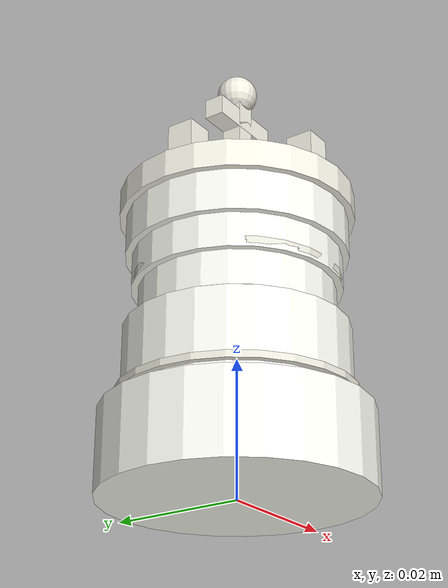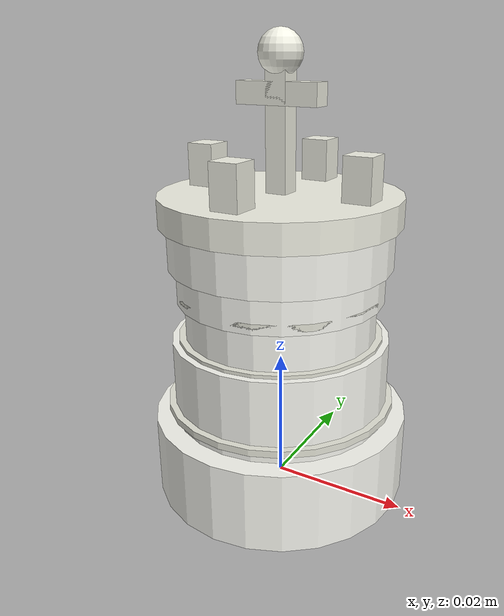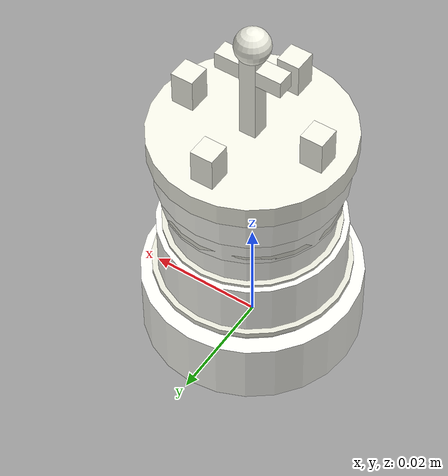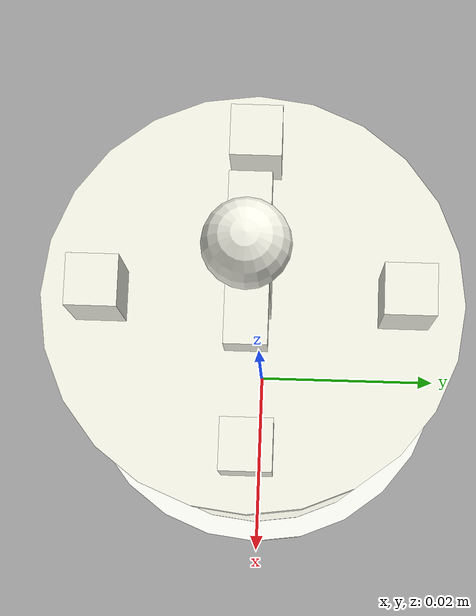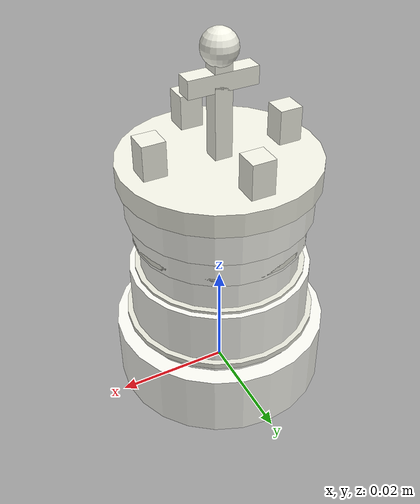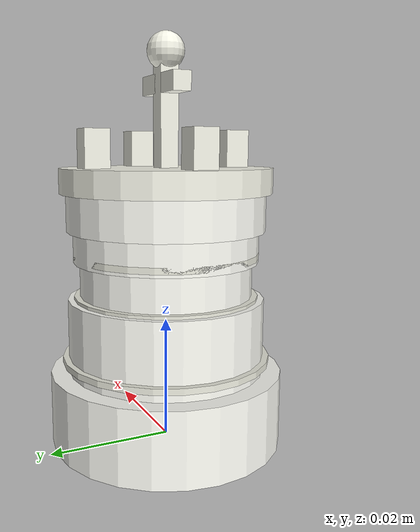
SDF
<?xml version="1.0" ?>
<sdf version="1.6">
  <model name="chess_king_white">
    <link name="link">
      <pose>0 0 0 0 0 0</pose>

      <inertial>
        <mass>0.12</mass>
        <pose>0 0 0.022 0 0 0</pose>
        <inertia>
          <ixx>0.00004</ixx>
          <ixy>0</ixy>
          <ixz>0</ixz>
          <iyy>0.00004</iyy>
          <iyz>0</iyz>
          <izz>0.00001</izz>
        </inertia>
      </inertial>

      <!-- Base -->
      <collision name="base_collision">
        <pose>0 0 0.006 0 0 0</pose>
        <geometry>
          <cylinder>
            <radius>0.019</radius>
            <length>0.012</length>
          </cylinder>
        </geometry>
        <surface>
          <friction>
            <ode>
              <mu>0.8</mu>
              <mu2>0.8</mu2>
            </ode>
          </friction>
          <bounce>
            <restitution_coefficient>0.1</restitution_coefficient>
          </bounce>
        </surface>
      </collision>

      <!-- Main body (royal proportions) -->
      <collision name="body_bottom_collision">
        <pose>0 0 0.017 0 0 0</pose>
        <geometry>
          <cylinder>
            <radius>0.016</radius>
            <length>0.014</length>
          </cylinder>
        </geometry>
      </collision>

      <collision name="body_middle_collision">
        <pose>0 0 0.026 0 0 0</pose>
        <geometry>
          <cylinder>
            <radius>0.014</radius>
            <length>0.010</length>
          </cylinder>
        </geometry>
      </collision>

      <collision name="body_upper_collision">
        <pose>0 0 0.033 0 0 0</pose>
        <geometry>
          <cylinder>
            <radius>0.015</radius>
            <length>0.006</length>
          </cylinder>
        </geometry>
      </collision>

      <!-- Crown base -->
      <collision name="crown_base_collision">
        <pose>0 0 0.038 0 0 0</pose>
        <geometry>
          <cylinder>
            <radius>0.016</radius>
            <length>0.006</length>
          </cylinder>
        </geometry>
      </collision>

      <!-- Crown band with decorative elements -->
      <collision name="crown_band_collision">
        <pose>0 0 0.043 0 0 0</pose>
        <geometry>
          <cylinder>
            <radius>0.017</radius>
            <length>0.004</length>
          </cylinder>
        </geometry>
      </collision>

      <!-- Crown decorative points -->
      <collision name="crown_decoration_1">
        <pose>0.012 0 0.047 0 0 0</pose>
        <geometry>
          <box>
            <size>0.004 0.004 0.008</size>
          </box>
        </geometry>
      </collision>

      <collision name="crown_decoration_2">
        <pose>-0.012 0 0.047 0 0 0</pose>
        <geometry>
          <box>
            <size>0.004 0.004 0.008</size>
          </box>
        </geometry>
      </collision>

      <collision name="crown_decoration_3">
        <pose>0 0.012 0.047 0 0 0</pose>
        <geometry>
          <box>
            <size>0.004 0.004 0.008</size>
          </box>
        </geometry>
      </collision>

      <collision name="crown_decoration_4">
        <pose>0 -0.012 0.047 0 0 0</pose>
        <geometry>
          <box>
            <size>0.004 0.004 0.008</size>
          </box>
        </geometry>
      </collision>

      <!-- Cross (distinctive king feature) -->
      <!-- Vertical part of cross -->
      <collision name="cross_vertical_collision">
        <pose>0 0 0.054 0 0 0</pose>
        <geometry>
          <box>
            <size>0.003 0.003 0.018</size>
          </box>
        </geometry>
      </collision>

      <!-- Horizontal part of cross -->
      <collision name="cross_horizontal_collision">
        <pose>0 0 0.058 0 0 0</pose>
        <geometry>
          <box>
            <size>0.012 0.003 0.003</size>
          </box>
        </geometry>
      </collision>

      <!-- Cross top sphere -->
      <collision name="cross_top_collision">
        <pose>0 0 0.063 0 0 0</pose>
        <geometry>
          <sphere>
            <radius>0.003</radius>
          </sphere>
        </geometry>
      </collision>

      <!-- Visuals -->
      <visual name="base_visual">
        <pose>0 0 0.006 0 0 0</pose>
        <geometry>
          <cylinder>
            <radius>0.019</radius>
            <length>0.012</length>
          </cylinder>
        </geometry>
        <material>
          <ambient>0.95 0.95 0.9 1</ambient>
          <diffuse>0.98 0.98 0.95 1</diffuse>
          <specular>0.4 0.4 0.4 1</specular>
        </material>
      </visual>

      <visual name="body_bottom_visual">
        <pose>0 0 0.017 0 0 0</pose>
        <geometry>
          <cylinder>
            <radius>0.016</radius>
            <length>0.014</length>
          </cylinder>
        </geometry>
        <material>
          <ambient>0.95 0.95 0.9 1</ambient>
          <diffuse>0.98 0.98 0.95 1</diffuse>
          <specular>0.4 0.4 0.4 1</specular>
        </material>
      </visual>

      <visual name="body_middle_visual">
        <pose>0 0 0.026 0 0 0</pose>
        <geometry>
          <cylinder>
            <radius>0.014</radius>
            <length>0.010</length>
          </cylinder>
        </geometry>
        <material>
          <ambient>0.95 0.95 0.9 1</ambient>
          <diffuse>0.98 0.98 0.95 1</diffuse>
          <specular>0.4 0.4 0.4 1</specular>
        </material>
      </visual>

      <visual name="body_upper_visual">
        <pose>0 0 0.033 0 0 0</pose>
        <geometry>
          <cylinder>
            <radius>0.015</radius>
            <length>0.006</length>
          </cylinder>
        </geometry>
        <material>
          <ambient>0.95 0.95 0.9 1</ambient>
          <diffuse>0.98 0.98 0.95 1</diffuse>
          <specular>0.4 0.4 0.4 1</specular>
        </material>
      </visual>

      <visual name="crown_base_visual">
        <pose>0 0 0.038 0 0 0</pose>
        <geometry>
          <cylinder>
            <radius>0.016</radius>
            <length>0.006</length>
          </cylinder>
        </geometry>
        <material>
          <ambient>0.95 0.95 0.9 1</ambient>
          <diffuse>0.98 0.98 0.95 1</diffuse>
          <specular>0.5 0.5 0.5 1</specular>
        </material>
      </visual>

      <visual name="crown_band_visual">
        <pose>0 0 0.043 0 0 0</pose>
        <geometry>
          <cylinder>
            <radius>0.017</radius>
            <length>0.004</length>
          </cylinder>
        </geometry>
        <material>
          <ambient>0.9 0.9 0.85 1</ambient>
          <diffuse>0.95 0.95 0.9 1</diffuse>
          <specular>0.6 0.6 0.6 1</specular>
        </material>
      </visual>

      <!-- Crown decorations -->
      <visual name="crown_decoration_1_visual">
        <pose>0.012 0 0.047 0 0 0</pose>
        <geometry>
          <box>
            <size>0.004 0.004 0.008</size>
          </box>
        </geometry>
        <material>
          <ambient>0.9 0.9 0.85 1</ambient>
          <diffuse>0.95 0.95 0.9 1</diffuse>
          <specular>0.6 0.6 0.6 1</specular>
        </material>
      </visual>

      <visual name="crown_decoration_2_visual">
        <pose>-0.012 0 0.047 0 0 0</pose>
        <geometry>
          <box>
            <size>0.004 0.004 0.008</size>
          </box>
        </geometry>
        <material>
          <ambient>0.9 0.9 0.85 1</ambient>
          <diffuse>0.95 0.95 0.9 1</diffuse>
          <specular>0.6 0.6 0.6 1</specular>
        </material>
      </visual>

      <visual name="crown_decoration_3_visual">
        <pose>0 0.012 0.047 0 0 0</pose>
        <geometry>
          <box>
            <size>0.004 0.004 0.008</size>
          </box>
        </geometry>
        <material>
          <ambient>0.9 0.9 0.85 1</ambient>
          <diffuse>0.95 0.95 0.9 1</diffuse>
          <specular>0.6 0.6 0.6 1</specular>
        </material>
      </visual>

      <visual name="crown_decoration_4_visual">
        <pose>0 -0.012 0.047 0 0 0</pose>
        <geometry>
          <box>
            <size>0.004 0.004 0.008</size>
          </box>
        </geometry>
        <material>
          <ambient>0.9 0.9 0.85 1</ambient>
          <diffuse>0.95 0.95 0.9 1</diffuse>
          <specular>0.6 0.6 0.6 1</specular>
        </material>
      </visual>

      <!-- Cross visuals -->
      <visual name="cross_vertical_visual">
        <pose>0 0 0.054 0 0 0</pose>
        <geometry>
          <box>
            <size>0.003 0.003 0.018</size>
          </box>
        </geometry>
        <material>
          <ambient>0.9 0.9 0.85 1</ambient>
          <diffuse>0.95 0.95 0.9 1</diffuse>
          <specular>0.7 0.7 0.7 1</specular>
        </material>
      </visual>

      <visual name="cross_horizontal_visual">
        <pose>0 0 0.058 0 0 0</pose>
        <geometry>
          <box>
            <size>0.012 0.003 0.003</size>
          </box>
        </geometry>
        <material>
          <ambient>0.9 0.9 0.85 1</ambient>
          <diffuse>0.95 0.95 0.9 1</diffuse>
          <specular>0.7 0.7 0.7 1</specular>
        </material>
      </visual>

      <visual name="cross_top_visual">
        <pose>0 0 0.063 0 0 0</pose>
        <geometry>
          <sphere>
            <radius>0.003</radius>
          </sphere>
        </geometry>
        <material>
          <ambient>0.9 0.9 0.85 1</ambient>
          <diffuse>0.95 0.95 0.9 1</diffuse>
          <specular>0.8 0.8 0.8 1</specular>
        </material>
      </visual>

      <!-- Decorative bands -->
      <visual name="band_1">
        <pose>0 0 0.014 0 0 0</pose>
        <geometry>
          <cylinder>
            <radius>0.017</radius>
            <length>0.001</length>
          </cylinder>
        </geometry>
        <material>
          <ambient>0.85 0.85 0.8 1</ambient>
          <diffuse>0.9 0.9 0.85 1</diffuse>
          <specular>0.3 0.3 0.3 1</specular>
        </material>
      </visual>

      <visual name="band_2">
        <pose>0 0 0.024 0 0 0</pose>
        <geometry>
          <cylinder>
            <radius>0.015</radius>
            <length>0.001</length>
          </cylinder>
        </geometry>
        <material>
          <ambient>0.85 0.85 0.8 1</ambient>
          <diffuse>0.9 0.9 0.85 1</diffuse>
          <specular>0.3 0.3 0.3 1</specular>
        </material>
      </visual>

      <visual name="band_3">
        <pose>0 0 0.031 0 0 0</pose>
        <geometry>
          <cylinder>
            <radius>0.015</radius>
            <length>0.001</length>
          </cylinder>
        </geometry>
        <material>
          <ambient>0.85 0.85 0.8 1</ambient>
          <diffuse>0.9 0.9 0.85 1</diffuse>
          <specular>0.3 0.3 0.3 1</specular>
        </material>
      </visual>

      <!-- Royal jewel at base -->
      <visual name="royal_jewel">
        <pose>0 0 0.041 0 0 0</pose>
        <geometry>
          <sphere>
            <radius>0.003</radius>
          </sphere>
        </geometry>
        <material>
          <ambient>0.8 0.8 1.0 1</ambient>
          <diffuse>0.9 0.9 1.0 1</diffuse>
          <specular>0.9 0.9 0.9 1</specular>
        </material>
      </visual>
    </link>
  </model>
</sdf>
